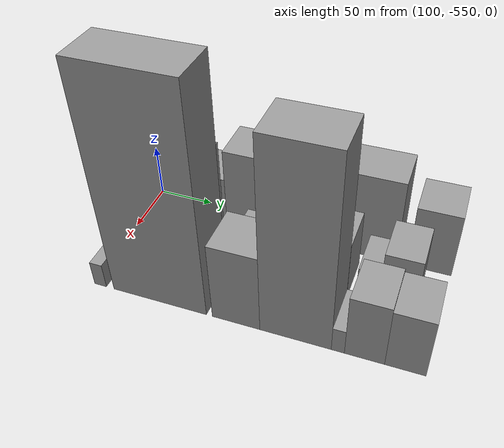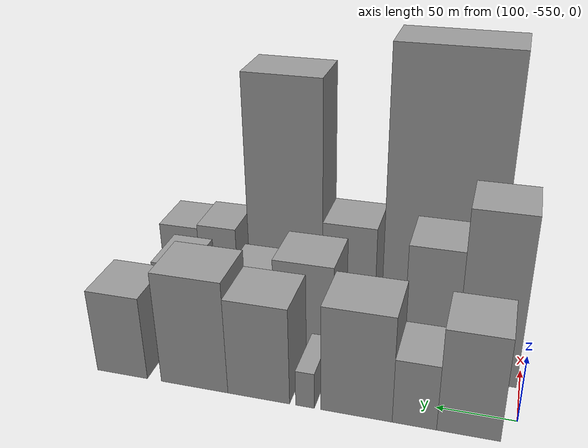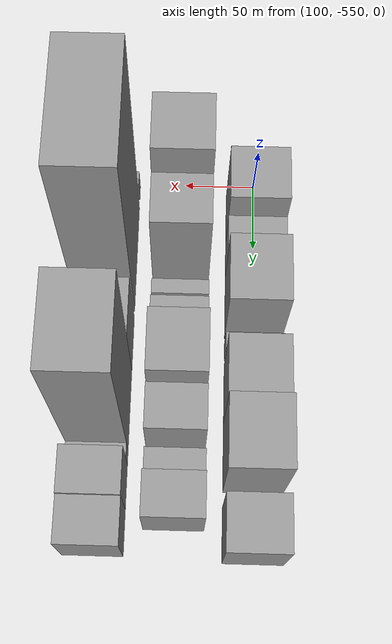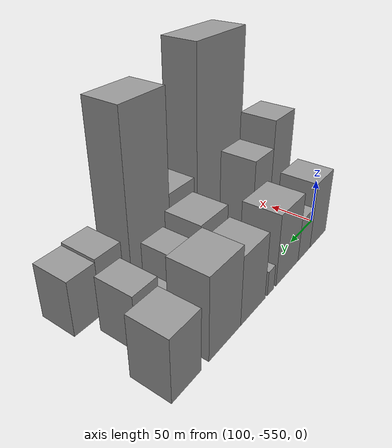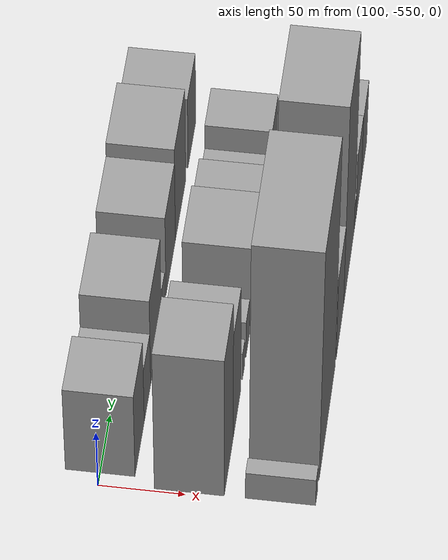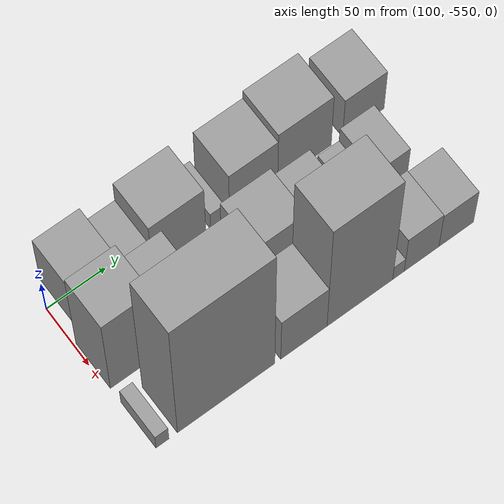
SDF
<sdf version="1.6">
 <world name="default">
  <model name="building_1">
   <static>1</static>
   <pose>100.0000 -521.8874 0 0.000000 0.000000 0.000000</pose>
   <link name="link">
    <pose>0 0 37.50 0 0 0</pose>
    <collision name="collision"><geometry><box><size>40.0000 38.2253 75.0000</size></box></geometry></collision>
    <visual name="visual">
     <cast_shadows>0</cast_shadows>
     <geometry><box><size>40.0000 38.2253 75.0000</size></box></geometry>
     <material>
      <script>
       <uri>model://grey_wall/materials/scripts</uri>
       <uri>model://grey_wall/materials/textures</uri>
       <name>vrc/grey_wall</name>
      </script>
     </material>
    </visual>
   </link>
  </model>
  <model name="building_2">
   <static>1</static>
   <pose>100.0000 -489.1310 0 0.000000 0.000000 0.000000</pose>
   <link name="link">
    <pose>0 0 24.00 0 0 0</pose>
    <collision name="collision"><geometry><box><size>40.0000 27.2876 48.0000</size></box></geometry></collision>
    <visual name="visual">
     <cast_shadows>0</cast_shadows>
     <geometry><box><size>40.0000 27.2876 48.0000</size></box></geometry>
     <material>
      <script>
       <uri>model://grey_wall/materials/scripts</uri>
       <uri>model://grey_wall/materials/textures</uri>
       <name>vrc/grey_wall</name>
      </script>
     </material>
    </visual>
   </link>
  </model>
  <model name="building_3">
   <static>1</static>
   <pose>100.0000 -452.7695 0 0.000000 0.000000 0.000000</pose>
   <link name="link">
    <pose>0 0 39.00 0 0 0</pose>
    <collision name="collision"><geometry><box><size>40.0000 45.4354 78.0000</size></box></geometry></collision>
    <visual name="visual">
     <cast_shadows>0</cast_shadows>
     <geometry><box><size>40.0000 45.4354 78.0000</size></box></geometry>
     <material>
      <script>
       <uri>model://grey_wall/materials/scripts</uri>
       <uri>model://grey_wall/materials/textures</uri>
       <name>vrc/grey_wall</name>
      </script>
     </material>
    </visual>
   </link>
  </model>
  <model name="building_4">
   <static>1</static>
   <pose>100.0000 -419.9362 0 0.000000 0.000000 0.000000</pose>
   <link name="link">
    <pose>0 0 13.50 0 0 0</pose>
    <collision name="collision"><geometry><box><size>40.0000 12.2310 27.0000</size></box></geometry></collision>
    <visual name="visual">
     <cast_shadows>0</cast_shadows>
     <geometry><box><size>40.0000 12.2310 27.0000</size></box></geometry>
     <material>
      <script>
       <uri>model://grey_wall/materials/scripts</uri>
       <uri>model://grey_wall/materials/textures</uri>
       <name>vrc/grey_wall</name>
      </script>
     </material>
    </visual>
   </link>
  </model>
  <model name="building_5">
   <static>1</static>
   <pose>100.0000 -389.0975 0 0.000000 0.000000 0.000000</pose>
   <link name="link">
    <pose>0 0 36.00 0 0 0</pose>
    <collision name="collision"><geometry><box><size>40.0000 41.4465 72.0000</size></box></geometry></collision>
    <visual name="visual">
     <cast_shadows>0</cast_shadows>
     <geometry><box><size>40.0000 41.4465 72.0000</size></box></geometry>
     <material>
      <script>
       <uri>model://grey_wall/materials/scripts</uri>
       <uri>model://grey_wall/materials/textures</uri>
       <name>vrc/grey_wall</name>
      </script>
     </material>
    </visual>
   </link>
  </model>
  <model name="building_6">
   <static>1</static>
   <pose>100.0000 -345.1683 0 0.000000 0.000000 0.000000</pose>
   <link name="link">
    <pose>0 0 42.00 0 0 0</pose>
    <collision name="collision"><geometry><box><size>40.0000 46.4119 84.0000</size></box></geometry></collision>
    <visual name="visual">
     <cast_shadows>0</cast_shadows>
     <geometry><box><size>40.0000 46.4119 84.0000</size></box></geometry>
     <material>
      <script>
       <uri>model://grey_wall/materials/scripts</uri>
       <uri>model://grey_wall/materials/textures</uri>
       <name>vrc/grey_wall</name>
      </script>
     </material>
    </visual>
   </link>
  </model>
  <model name="building_7">
   <static>1</static>
   <pose>100.0000 -293.8474 0 0.000000 0.000000 0.000000</pose>
   <link name="link">
    <pose>0 0 31.50 0 0 0</pose>
    <collision name="collision"><geometry><box><size>40.0000 36.2299 63.0000</size></box></geometry></collision>
    <visual name="visual">
     <cast_shadows>0</cast_shadows>
     <geometry><box><size>40.0000 36.2299 63.0000</size></box></geometry>
     <material>
      <script>
       <uri>model://grey_wall/materials/scripts</uri>
       <uri>model://grey_wall/materials/textures</uri>
       <name>vrc/grey_wall</name>
      </script>
     </material>
    </visual>
   </link>
  </model>
  <model name="building_32">
   <static>1</static>
   <pose>152.0000 -528.0277 0 0.000000 0.000000 0.000000</pose>
   <link name="link">
    <pose>0 0 63.00 0 0 0</pose>
    <collision name="collision"><geometry><box><size>40.0000 39.9446 126.0000</size></box></geometry></collision>
    <visual name="visual">
     <cast_shadows>0</cast_shadows>
     <geometry><box><size>40.0000 39.9446 126.0000</size></box></geometry>
     <material>
      <script>
       <uri>model://grey_wall/materials/scripts</uri>
       <uri>model://grey_wall/materials/textures</uri>
       <name>vrc/grey_wall</name>
      </script>
     </material>
    </visual>
   </link>
  </model>
  <model name="building_33">
   <static>1</static>
   <pose>152.0000 -490.4714 0 0.000000 0.000000 0.000000</pose>
   <link name="link">
    <pose>0 0 48.00 0 0 0</pose>
    <collision name="collision"><geometry><box><size>40.0000 35.1679 96.0000</size></box></geometry></collision>
    <visual name="visual">
     <cast_shadows>0</cast_shadows>
     <geometry><box><size>40.0000 35.1679 96.0000</size></box></geometry>
     <material>
      <script>
       <uri>model://grey_wall/materials/scripts</uri>
       <uri>model://grey_wall/materials/textures</uri>
       <name>vrc/grey_wall</name>
      </script>
     </material>
    </visual>
   </link>
  </model>
  <model name="building_34">
   <static>1</static>
   <pose>152.0000 -459.4915 0 0.000000 0.000000 0.000000</pose>
   <link name="link">
    <pose>0 0 12.00 0 0 0</pose>
    <collision name="collision"><geometry><box><size>40.0000 10.7919 24.0000</size></box></geometry></collision>
    <visual name="visual">
     <cast_shadows>0</cast_shadows>
     <geometry><box><size>40.0000 10.7919 24.0000</size></box></geometry>
     <material>
      <script>
       <uri>model://grey_wall/materials/scripts</uri>
       <uri>model://grey_wall/materials/textures</uri>
       <name>vrc/grey_wall</name>
      </script>
     </material>
    </visual>
   </link>
  </model>
  <model name="building_35">
   <static>1</static>
   <pose>152.0000 -440.4224 0 0.000000 0.000000 0.000000</pose>
   <link name="link">
    <pose>0 0 16.50 0 0 0</pose>
    <collision name="collision"><geometry><box><size>40.0000 17.3464 33.0000</size></box></geometry></collision>
    <visual name="visual">
     <cast_shadows>0</cast_shadows>
     <geometry><box><size>40.0000 17.3464 33.0000</size></box></geometry>
     <material>
      <script>
       <uri>model://grey_wall/materials/scripts</uri>
       <uri>model://grey_wall/materials/textures</uri>
       <name>vrc/grey_wall</name>
      </script>
     </material>
    </visual>
   </link>
  </model>
  <model name="building_36">
   <static>1</static>
   <pose>152.0000 -404.7076 0 0.000000 0.000000 0.000000</pose>
   <link name="link">
    <pose>0 0 36.00 0 0 0</pose>
    <collision name="collision"><geometry><box><size>40.0000 42.0833 72.0000</size></box></geometry></collision>
    <visual name="visual">
     <cast_shadows>0</cast_shadows>
     <geometry><box><size>40.0000 42.0833 72.0000</size></box></geometry>
     <material>
      <script>
       <uri>model://grey_wall/materials/scripts</uri>
       <uri>model://grey_wall/materials/textures</uri>
       <name>vrc/grey_wall</name>
      </script>
     </material>
    </visual>
   </link>
  </model>
  <model name="building_37">
   <static>1</static>
   <pose>152.0000 -365.6714 0 0.000000 0.000000 0.000000</pose>
   <link name="link">
    <pose>0 0 28.50 0 0 0</pose>
    <collision name="collision"><geometry><box><size>40.0000 29.9892 57.0000</size></box></geometry></collision>
    <visual name="visual">
     <cast_shadows>0</cast_shadows>
     <geometry><box><size>40.0000 29.9892 57.0000</size></box></geometry>
     <material>
      <script>
       <uri>model://grey_wall/materials/scripts</uri>
       <uri>model://grey_wall/materials/textures</uri>
       <name>vrc/grey_wall</name>
      </script>
     </material>
    </visual>
   </link>
  </model>
  <model name="building_38">
   <static>1</static>
   <pose>152.0000 -334.5236 0 0.000000 0.000000 0.000000</pose>
   <link name="link">
    <pose>0 0 18.00 0 0 0</pose>
    <collision name="collision"><geometry><box><size>40.0000 18.3064 36.0000</size></box></geometry></collision>
    <visual name="visual">
     <cast_shadows>0</cast_shadows>
     <geometry><box><size>40.0000 18.3064 36.0000</size></box></geometry>
     <material>
      <script>
       <uri>model://grey_wall/materials/scripts</uri>
       <uri>model://grey_wall/materials/textures</uri>
       <name>vrc/grey_wall</name>
      </script>
     </material>
    </visual>
   </link>
  </model>
  <model name="building_39">
   <static>1</static>
   <pose>152.0000 -310.7501 0 0.000000 0.000000 0.000000</pose>
   <link name="link">
    <pose>0 0 28.50 0 0 0</pose>
    <collision name="collision"><geometry><box><size>40.0000 29.2405 57.0000</size></box></geometry></collision>
    <visual name="visual">
     <cast_shadows>0</cast_shadows>
     <geometry><box><size>40.0000 29.2405 57.0000</size></box></geometry>
     <material>
      <script>
       <uri>model://grey_wall/materials/scripts</uri>
       <uri>model://grey_wall/materials/textures</uri>
       <name>vrc/grey_wall</name>
      </script>
     </material>
    </visual>
   </link>
  </model>
  <model name="building_59">
   <static>1</static>
   <pose>204.0000 -542.6308 0 0.000000 0.000000 0.000000</pose>
   <link name="link">
    <pose>0 0 12.00 0 0 0</pose>
    <collision name="collision"><geometry><box><size>40.0000 10.7384 24.0000</size></box></geometry></collision>
    <visual name="visual">
     <cast_shadows>0</cast_shadows>
     <geometry><box><size>40.0000 10.7384 24.0000</size></box></geometry>
     <material>
      <script>
       <uri>model://grey_wall/materials/scripts</uri>
       <uri>model://grey_wall/materials/textures</uri>
       <name>vrc/grey_wall</name>
      </script>
     </material>
    </visual>
   </link>
  </model>
  <model name="building_60">
   <static>1</static>
   <pose>204.0000 -489.5837 0 0.000000 0.000000 0.000000</pose>
   <link name="link">
    <pose>0 0 103.50 0 0 0</pose>
    <collision name="collision"><geometry><box><size>40.0000 81.3557 207.0000</size></box></geometry></collision>
    <visual name="visual">
     <cast_shadows>0</cast_shadows>
     <geometry><box><size>40.0000 81.3557 207.0000</size></box></geometry>
     <material>
      <script>
       <uri>model://grey_wall/materials/scripts</uri>
       <uri>model://grey_wall/materials/textures</uri>
       <name>vrc/grey_wall</name>
      </script>
     </material>
    </visual>
   </link>
  </model>
  <model name="building_61">
   <static>1</static>
   <pose>204.0000 -424.3254 0 0.000000 0.000000 0.000000</pose>
   <link name="link">
    <pose>0 0 37.50 0 0 0</pose>
    <collision name="collision"><geometry><box><size>40.0000 39.1609 75.0000</size></box></geometry></collision>
    <visual name="visual">
     <cast_shadows>0</cast_shadows>
     <geometry><box><size>40.0000 39.1609 75.0000</size></box></geometry>
     <material>
      <script>
       <uri>model://grey_wall/materials/scripts</uri>
       <uri>model://grey_wall/materials/textures</uri>
       <name>vrc/grey_wall</name>
      </script>
     </material>
    </visual>
   </link>
  </model>
  <model name="building_62">
   <static>1</static>
   <pose>204.0000 -376.6164 0 0.000000 0.000000 0.000000</pose>
   <link name="link">
    <pose>0 0 90.00 0 0 0</pose>
    <collision name="collision"><geometry><box><size>40.0000 56.2571 180.0000</size></box></geometry></collision>
    <visual name="visual">
     <cast_shadows>0</cast_shadows>
     <geometry><box><size>40.0000 56.2571 180.0000</size></box></geometry>
     <material>
      <script>
       <uri>model://grey_wall/materials/scripts</uri>
       <uri>model://grey_wall/materials/textures</uri>
       <name>vrc/grey_wall</name>
      </script>
     </material>
    </visual>
   </link>
  </model>
  <model name="building_63">
   <static>1</static>
   <pose>204.0000 -343.4911 0 0.000000 0.000000 0.000000</pose>
   <link name="link">
    <pose>0 0 12.00 0 0 0</pose>
    <collision name="collision"><geometry><box><size>40.0000 9.9936 24.0000</size></box></geometry></collision>
    <visual name="visual">
     <cast_shadows>0</cast_shadows>
     <geometry><box><size>40.0000 9.9936 24.0000</size></box></geometry>
     <material>
      <script>
       <uri>model://grey_wall/materials/scripts</uri>
       <uri>model://grey_wall/materials/textures</uri>
       <name>vrc/grey_wall</name>
      </script>
     </material>
    </visual>
   </link>
  </model>
  <model name="building_64">
   <static>1</static>
   <pose>204.0000 -323.4847 0 0.000000 0.000000 0.000000</pose>
   <link name="link">
    <pose>0 0 30.00 0 0 0</pose>
    <collision name="collision"><geometry><box><size>40.0000 30.0192 60.0000</size></box></geometry></collision>
    <visual name="visual">
     <cast_shadows>0</cast_shadows>
     <geometry><box><size>40.0000 30.0192 60.0000</size></box></geometry>
     <material>
      <script>
       <uri>model://grey_wall/materials/scripts</uri>
       <uri>model://grey_wall/materials/textures</uri>
       <name>vrc/grey_wall</name>
      </script>
     </material>
    </visual>
   </link>
  </model>
  <model name="building_65">
   <static>1</static>
   <pose>204.0000 -293.4481 0 0.000000 0.000000 0.000000</pose>
   <link name="link">
    <pose>0 0 28.50 0 0 0</pose>
    <collision name="collision"><geometry><box><size>40.0000 30.0540 57.0000</size></box></geometry></collision>
    <visual name="visual">
     <cast_shadows>0</cast_shadows>
     <geometry><box><size>40.0000 30.0540 57.0000</size></box></geometry>
     <material>
      <script>
       <uri>model://grey_wall/materials/scripts</uri>
       <uri>model://grey_wall/materials/textures</uri>
       <name>vrc/grey_wall</name>
      </script>
     </material>
    </visual>
   </link>
  </model>
 </world>
</sdf>
